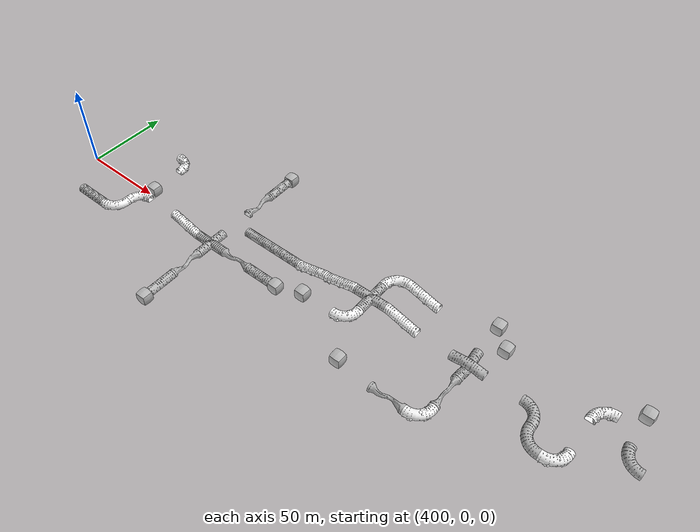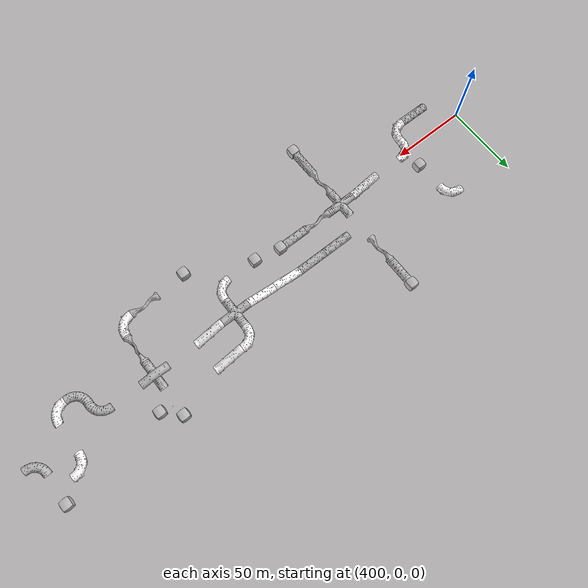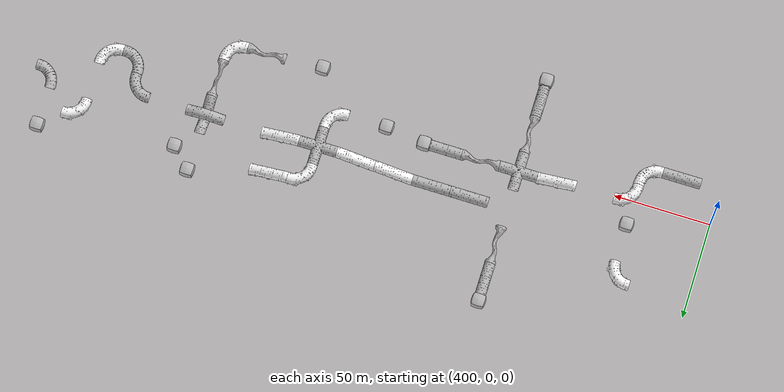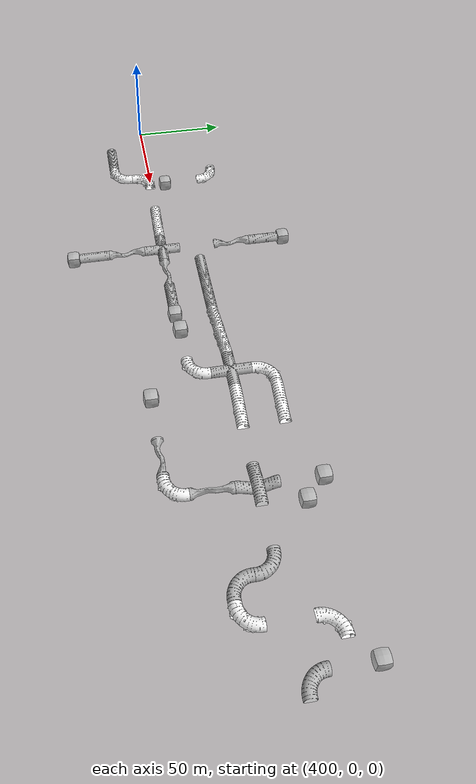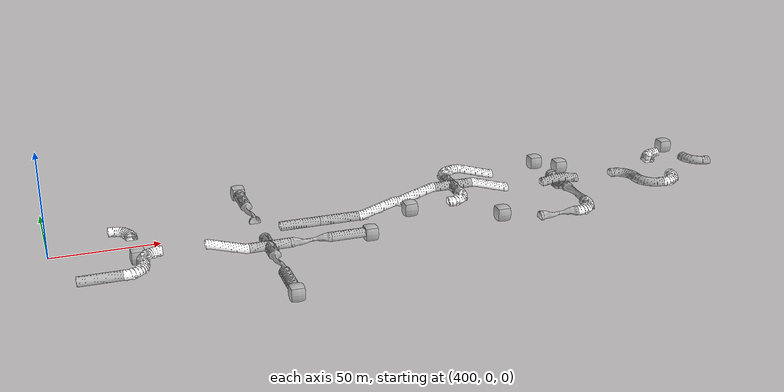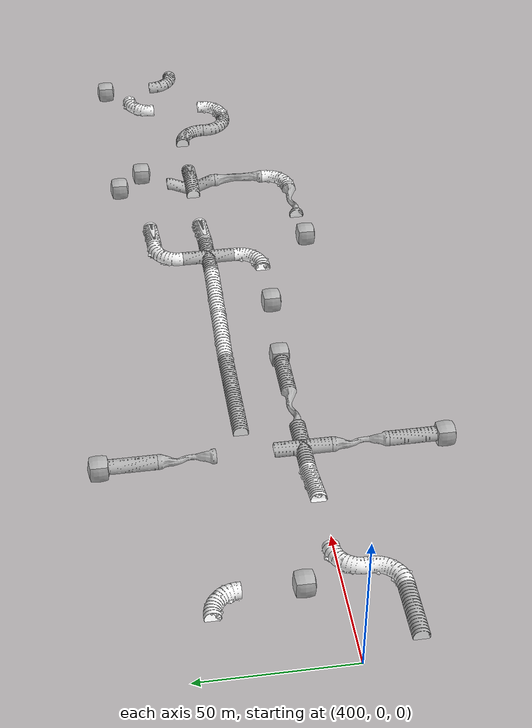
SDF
<sdf version="1.6">
 <world name="tunnel_circuit_practice_02">
  <include>
   <name>tile_12</name>
   <uri>model://tunnel_tile_5</uri>
   <pose>500.000000 60.000000 -10.000000 0 0 -3.141593</pose>
  </include>
  <include>
   <name>tile_13</name>
   <uri>model://tunnel_tile_blocker</uri>
   <pose>500.000000 70.000000 -10.000000 0 0 -1.570796</pose>
  </include>
  <include>
   <name>tile_32</name>
   <uri>model://Rough Tunnel Tile 90-degree Turn</uri>
   <pose>440.000000 40.000000 -10.000000 0 0 -1.570796</pose>
  </include>
  <include>
   <name>tile_33</name>
   <uri>model://constrained_tunnel_tile_short</uri>
   <pose>500.000000 40.000000 -10.000000 0 0 0.000000</pose>
  </include>
  <include>
   <name>tile_34</name>
   <uri>model://Rough Tunnel Tile 90-degree Turn</uri>
   <pose>600.000000 40.000000 0.000000 0 0 0.000000</pose>
  </include>
  <include>
   <name>tile_35</name>
   <uri>model://Rough Tunnel Tile Ramp</uri>
   <pose>620.000000 40.000000 -5.000000 0 0 1.570796</pose>
  </include>
  <include>
   <name>tile_38</name>
   <uri>model://tunnel_tile_blocker</uri>
   <pose>660.000000 50.000000 -5.000000 0 0 1.570796</pose>
  </include>
  <include>
   <name>tile_39</name>
   <uri>model://tunnel_tile_blocker</uri>
   <pose>670.000000 40.000000 -5.000000 0 0 1.570796</pose>
  </include>
  <include>
   <name>extinguisher_2</name>
   <uri>model://Extinguisher</uri>
   <pose>662.213989 41.591999 -4.977920 0 0 1.570796</pose>
  </include>
  <include>
   <name>tile_40</name>
   <uri>model://Rough Tunnel Tile 90-degree Turn</uri>
   <pose>720.000000 40.000000 -5.000000 0 0 0.000000</pose>
  </include>
  <include>
   <name>tile_42</name>
   <uri>model://tunnel_tile_blocker</uri>
   <pose>740.000000 50.000000 -5.000000 0 0 1.570796</pose>
  </include>
  <include>
   <name>tile_91</name>
   <uri>model://tunnel_tile_blocker</uri>
   <pose>440.000000 10.000000 -10.000000 0 0 -1.570796</pose>
  </include>
  <include>
   <name>tile_95</name>
   <uri>model://tunnel_tile_5</uri>
   <pose>520.000000 20.000000 -10.000000 0 0 -1.570796</pose>
  </include>
  <include>
   <name>tile_96</name>
   <uri>model://tunnel_tile_5</uri>
   <pose>540.000000 20.000000 -10.000000 0 0 -1.570796</pose>
  </include>
  <include>
   <name>tile_97</name>
   <uri>model://Rough Tunnel Tile Ramp</uri>
   <pose>560.000000 20.000000 -10.000000 0 0 -1.570796</pose>
  </include>
  <include>
   <name>tile_98</name>
   <uri>model://Rough Tunnel Tile Ramp</uri>
   <pose>580.000000 20.000000 -5.000000 0 0 -1.570796</pose>
  </include>
  <include>
   <name>tile_99</name>
   <uri>model://tunnel_tile_1</uri>
   <pose>600.000000 20.000000 0.000000 0 0 -1.570796</pose>
  </include>
  <include>
   <name>tile_100</name>
   <uri>model://Rough Tunnel Tile Ramp</uri>
   <pose>620.000000 20.000000 -5.000000 0 0 1.570796</pose>
  </include>
  <include>
   <name>tile_102</name>
   <uri>model://tunnel_tile_4</uri>
   <pose>660.000000 20.000000 -5.000000 0 0 1.570796</pose>
  </include>
  <include>
   <name>tile_104</name>
   <uri>model://tunnel_tile_2</uri>
   <pose>700.000000 20.000000 -5.000000 0 0 -1.570796</pose>
  </include>
  <include>
   <name>tile_106</name>
   <uri>model://tunnel_tile_2</uri>
   <pose>740.000000 20.000000 -5.000000 0 0 1.570796</pose>
  </include>
  <include>
   <name>tile_142</name>
   <uri>model://Rough Tunnel Tile 90-degree Turn</uri>
   <pose>440.000000 0.000000 -5.000000 0 0 0.000000</pose>
  </include>
  <include>
   <name>tile_144</name>
   <uri>model://Rough Tunnel Tile Ramp</uri>
   <pose>480.000000 0.000000 -10.000000 0 0 1.570796</pose>
  </include>
  <include>
   <name>tile_145</name>
   <uri>model://tunnel_tile_1</uri>
   <pose>500.000000 0.000000 -10.000000 0 0 1.570796</pose>
  </include>
  <include>
   <name>tile_146</name>
   <uri>model://constrained_tunnel_tile_short</uri>
   <pose>520.000000 0.000000 -10.000000 0 0 1.570796</pose>
  </include>
  <include>
   <name>tile_147</name>
   <uri>model://tunnel_tile_5</uri>
   <pose>540.000000 0.000000 -10.000000 0 0 -1.570796</pose>
  </include>
  <include>
   <name>tile_148</name>
   <uri>model://tunnel_tile_blocker</uri>
   <pose>550.000000 0.000000 -10.000000 0 0 -1.570796</pose>
  </include>
  <include>
   <name>tile_150</name>
   <uri>model://tunnel_tile_blocker</uri>
   <pose>570.000000 0.000000 0.000000 0 0 -1.570796</pose>
  </include>
  <include>
   <name>tile_151</name>
   <uri>model://Rough Tunnel Tile 90-degree Turn</uri>
   <pose>600.000000 0.000000 0.000000 0 0 -3.141593</pose>
  </include>
  <include>
   <name>tile_152</name>
   <uri>model://tunnel_tile_blocker</uri>
   <pose>610.000000 -20.000000 0.000000 0 0 1.570796</pose>
  </include>
  <include>
   <name>tile_153</name>
   <uri>model://constrained_tunnel_tile_tall</uri>
   <pose>660.000000 0.000000 -5.000000 0 0 0.000000</pose>
  </include>
  <include>
   <name>tile_154</name>
   <uri>model://tunnel_tile_2</uri>
   <pose>700.000000 0.000000 -5.000000 0 0 1.570796</pose>
  </include>
  <include>
   <name>tile_155</name>
   <uri>model://Rough Tunnel Tile 90-degree Turn</uri>
   <pose>720.000000 0.000000 -5.000000 0 0 -3.141593</pose>
  </include>
  <include>
   <name>tile_177</name>
   <uri>model://tunnel_tile_5</uri>
   <pose>420.000000 -20.000000 -5.000000 0 0 1.570796</pose>
  </include>
  <include>
   <name>tile_178</name>
   <uri>model://Rough Tunnel Tile 90-degree Turn</uri>
   <pose>440.000000 -20.000000 -5.000000 0 0 -3.141593</pose>
  </include>
  <include>
   <name>tile_179</name>
   <uri>model://constrained_tunnel_tile_short</uri>
   <pose>500.000000 -20.000000 -10.000000 0 0 0.000000</pose>
  </include>
  <include>
   <name>tile_181</name>
   <uri>model://constrained_tunnel_tile_short</uri>
   <pose>640.000000 -20.000000 -5.000000 0 0 1.570796</pose>
  </include>
  <include>
   <name>tile_182</name>
   <uri>model://Rough Tunnel Tile 90-degree Turn</uri>
   <pose>660.000000 -20.000000 -5.000000 0 0 -3.141593</pose>
  </include>
  <include>
   <name>tile_190</name>
   <uri>model://tunnel_tile_5</uri>
   <pose>500.000000 -40.000000 -10.000000 0 0 -3.141593</pose>
  </include>
  <include>
   <name>tile_191</name>
   <uri>model://tunnel_tile_blocker</uri>
   <pose>500.000000 -50.000000 -10.000000 0 0 -1.570796</pose>
  </include>
 </world>
</sdf>
